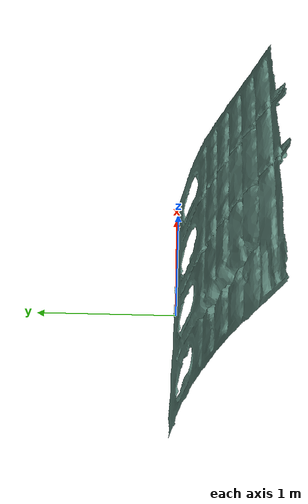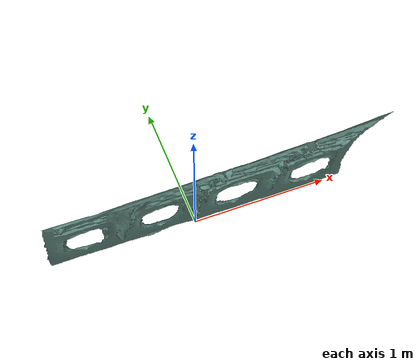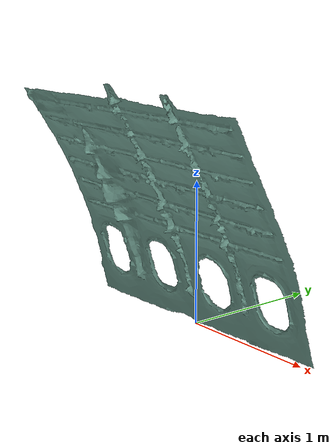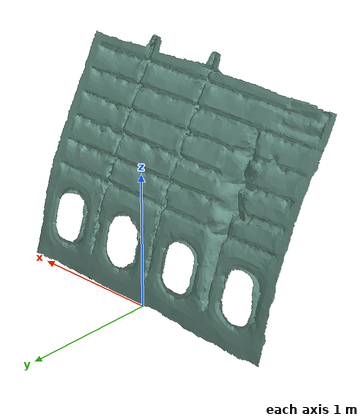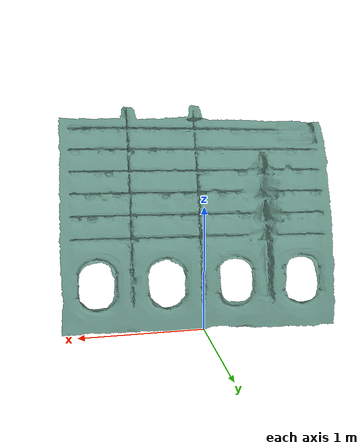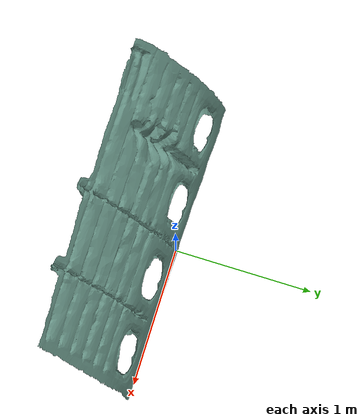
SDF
<?xml version="1.0" ?>
<sdf version="1.5">
  <model name="airplane_skin">
    <pose>0 0 0  0 0 0</pose>
    <static>true</static>
    <link name="skin">
      <collision name="skin_collision">
        <geometry>
          <mesh>
            <uri>model://airplane_skin/meshes/airplane-skin.dae</uri>
           </mesh>
        </geometry>
      </collision>
      <visual name="skin_visual">
        <geometry>
          <mesh>
            <uri>model://airplane_skin/meshes/airplane-skin.dae</uri>
           </mesh>
        </geometry>
        <material>
          <ambient>0.4 0.57 0.52 1</ambient>
          <diffuse>0.4 0.57 0.52 1</diffuse>
          <specular>0 0 0 0</specular>
          <emissive>0 0 0 1</emissive>
        </material>
      </visual>
    </link>
  </model>
</sdf>
